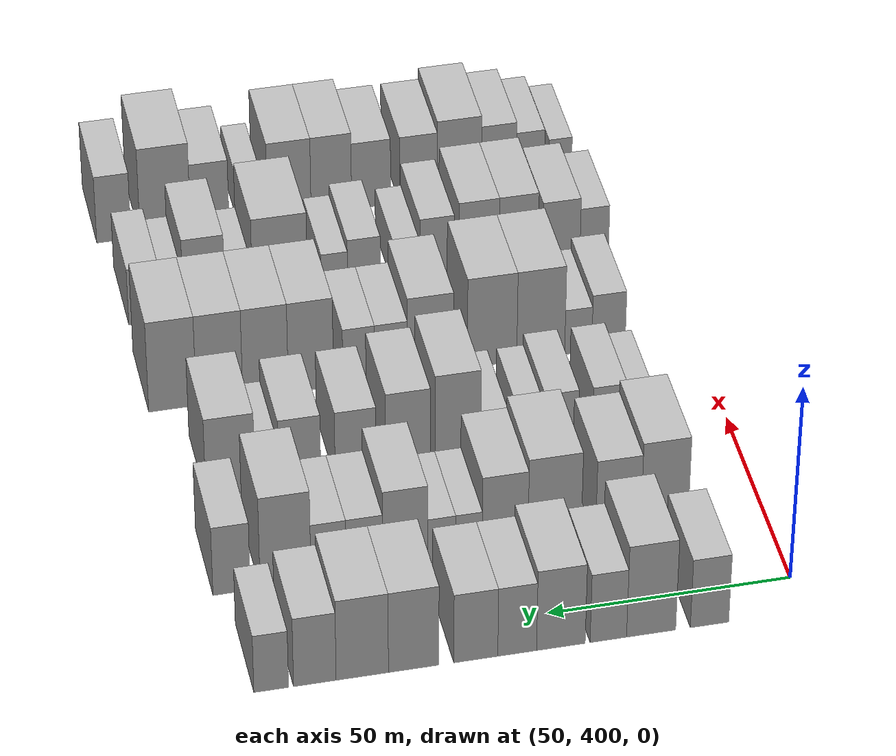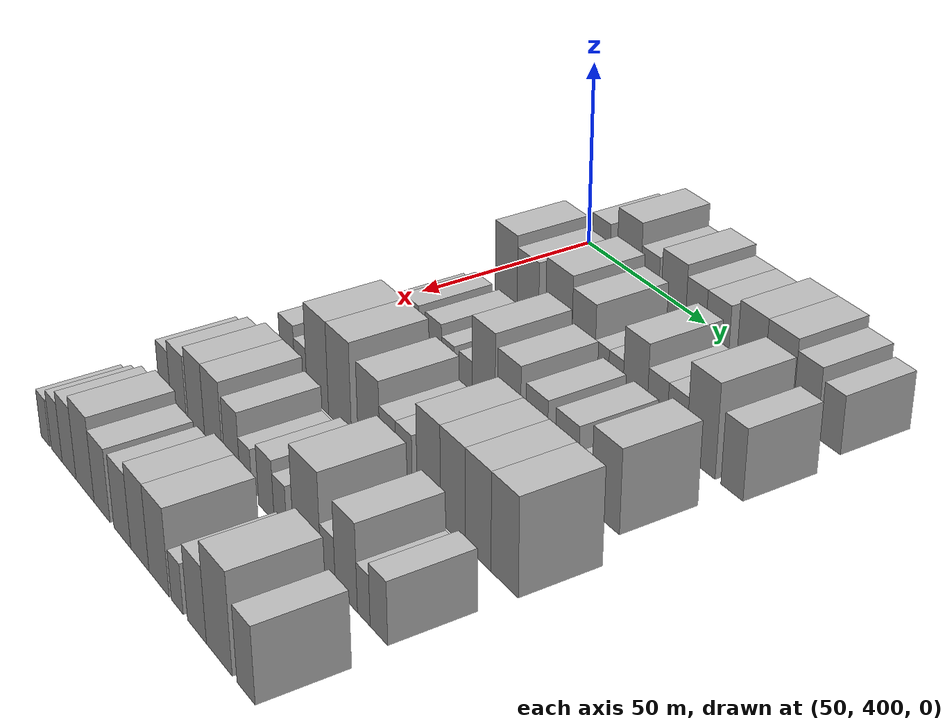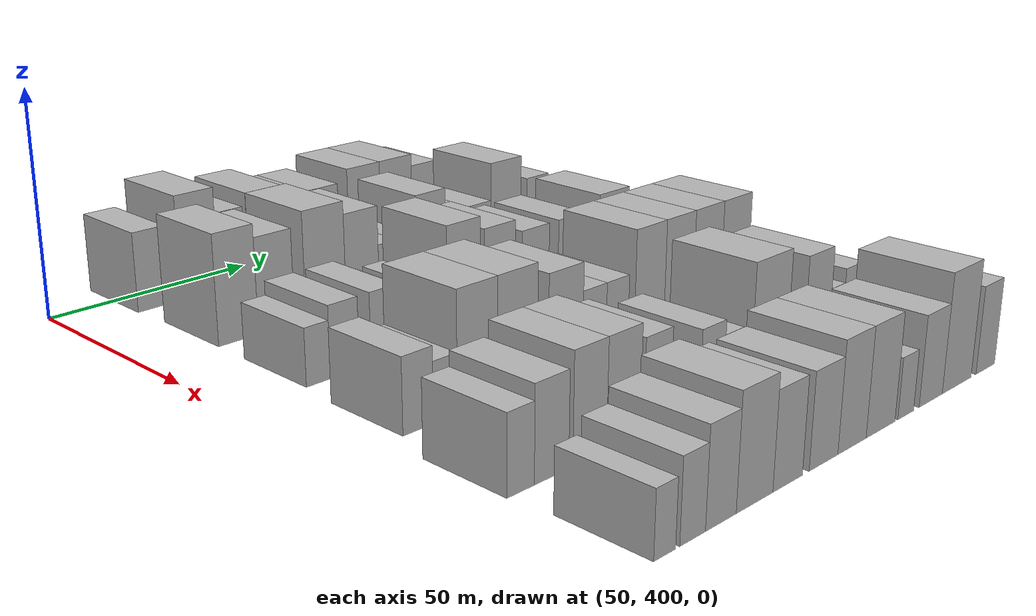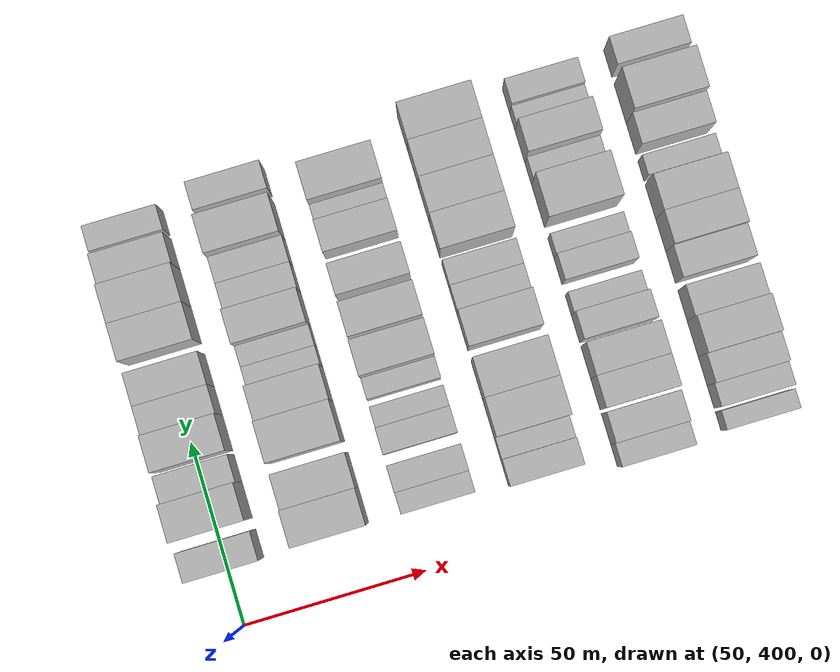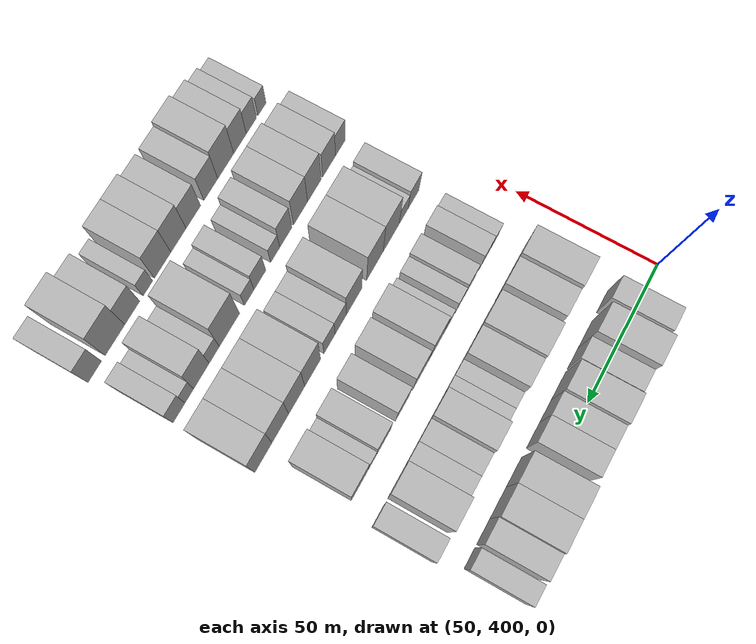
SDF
<sdf version="1.6">
 <world name="default">
  <model name="building_100">
   <static>1</static>
   <pose>50.0000 419.4300 0 0.000000 0.000000 0.000000</pose>
   <link name="link">
    <pose>0 0 9.00 0 0 0</pose>
    <collision name="collision"><geometry><box><size>20.0000 7.8443 18.0000</size></box></geometry></collision>
    <visual name="visual">
     <cast_shadows>0</cast_shadows>
     <geometry><box><size>20.0000 7.8443 18.0000</size></box></geometry>
     <material>
      <script>
       <uri>model://HANNAS_wall/materials/scripts</uri>
       <uri>model://HANNAS_wall/materials/textures</uri>
       <name>vrc/HANNAS_wall</name>
      </script>
     </material>
    </visual>
   </link>
  </model>
  <model name="building_101">
   <static>1</static>
   <pose>50.0000 431.3557 0 0.000000 0.000000 0.000000</pose>
   <link name="link">
    <pose>0 0 12.00 0 0 0</pose>
    <collision name="collision"><geometry><box><size>20.0000 10.0070 24.0000</size></box></geometry></collision>
    <visual name="visual">
     <cast_shadows>0</cast_shadows>
     <geometry><box><size>20.0000 10.0070 24.0000</size></box></geometry>
     <material>
      <script>
       <uri>model://HANNAS_wall/materials/scripts</uri>
       <uri>model://HANNAS_wall/materials/textures</uri>
       <name>vrc/HANNAS_wall</name>
      </script>
     </material>
    </visual>
   </link>
  </model>
  <model name="building_102">
   <static>1</static>
   <pose>50.0000 440.0651 0 0.000000 0.000000 0.000000</pose>
   <link name="link">
    <pose>0 0 9.00 0 0 0</pose>
    <collision name="collision"><geometry><box><size>20.0000 7.4118 18.0000</size></box></geometry></collision>
    <visual name="visual">
     <cast_shadows>0</cast_shadows>
     <geometry><box><size>20.0000 7.4118 18.0000</size></box></geometry>
     <material>
      <script>
       <uri>model://HANNAS_wall/materials/scripts</uri>
       <uri>model://HANNAS_wall/materials/textures</uri>
       <name>vrc/HANNAS_wall</name>
      </script>
     </material>
    </visual>
   </link>
  </model>
  <model name="building_103">
   <static>1</static>
   <pose>50.0000 449.6973 0 0.000000 0.000000 0.000000</pose>
   <link name="link">
    <pose>0 0 10.50 0 0 0</pose>
    <collision name="collision"><geometry><box><size>20.0000 9.8526 21.0000</size></box></geometry></collision>
    <visual name="visual">
     <cast_shadows>0</cast_shadows>
     <geometry><box><size>20.0000 9.8526 21.0000</size></box></geometry>
     <material>
      <script>
       <uri>model://HANNAS_wall/materials/scripts</uri>
       <uri>model://HANNAS_wall/materials/textures</uri>
       <name>vrc/HANNAS_wall</name>
      </script>
     </material>
    </visual>
   </link>
  </model>
  <model name="building_104">
   <static>1</static>
   <pose>50.0000 458.5355 0 0.000000 0.000000 0.000000</pose>
   <link name="link">
    <pose>0 0 9.00 0 0 0</pose>
    <collision name="collision"><geometry><box><size>20.0000 7.8239 18.0000</size></box></geometry></collision>
    <visual name="visual">
     <cast_shadows>0</cast_shadows>
     <geometry><box><size>20.0000 7.8239 18.0000</size></box></geometry>
     <material>
      <script>
       <uri>model://HANNAS_wall/materials/scripts</uri>
       <uri>model://HANNAS_wall/materials/textures</uri>
       <name>vrc/HANNAS_wall</name>
      </script>
     </material>
    </visual>
   </link>
  </model>
  <model name="building_105">
   <static>1</static>
   <pose>50.0000 466.8788 0 0.000000 0.000000 0.000000</pose>
   <link name="link">
    <pose>0 0 9.00 0 0 0</pose>
    <collision name="collision"><geometry><box><size>20.0000 8.8627 18.0000</size></box></geometry></collision>
    <visual name="visual">
     <cast_shadows>0</cast_shadows>
     <geometry><box><size>20.0000 8.8627 18.0000</size></box></geometry>
     <material>
      <script>
       <uri>model://HANNAS_wall/materials/scripts</uri>
       <uri>model://HANNAS_wall/materials/textures</uri>
       <name>vrc/HANNAS_wall</name>
      </script>
     </material>
    </visual>
   </link>
  </model>
  <model name="building_106">
   <static>1</static>
   <pose>50.0000 479.3639 0 0.000000 0.000000 0.000000</pose>
   <link name="link">
    <pose>0 0 10.50 0 0 0</pose>
    <collision name="collision"><geometry><box><size>20.0000 10.1074 21.0000</size></box></geometry></collision>
    <visual name="visual">
     <cast_shadows>0</cast_shadows>
     <geometry><box><size>20.0000 10.1074 21.0000</size></box></geometry>
     <material>
      <script>
       <uri>model://HANNAS_wall/materials/scripts</uri>
       <uri>model://HANNAS_wall/materials/textures</uri>
       <name>vrc/HANNAS_wall</name>
      </script>
     </material>
    </visual>
   </link>
  </model>
  <model name="building_107">
   <static>1</static>
   <pose>50.0000 489.6445 0 0.000000 0.000000 0.000000</pose>
   <link name="link">
    <pose>0 0 10.50 0 0 0</pose>
    <collision name="collision"><geometry><box><size>20.0000 10.4537 21.0000</size></box></geometry></collision>
    <visual name="visual">
     <cast_shadows>0</cast_shadows>
     <geometry><box><size>20.0000 10.4537 21.0000</size></box></geometry>
     <material>
      <script>
       <uri>model://HANNAS_wall/materials/scripts</uri>
       <uri>model://HANNAS_wall/materials/textures</uri>
       <name>vrc/HANNAS_wall</name>
      </script>
     </material>
    </visual>
   </link>
  </model>
  <model name="building_108">
   <static>1</static>
   <pose>50.0000 499.1113 0 0.000000 0.000000 0.000000</pose>
   <link name="link">
    <pose>0 0 9.00 0 0 0</pose>
    <collision name="collision"><geometry><box><size>20.0000 8.4799 18.0000</size></box></geometry></collision>
    <visual name="visual">
     <cast_shadows>0</cast_shadows>
     <geometry><box><size>20.0000 8.4799 18.0000</size></box></geometry>
     <material>
      <script>
       <uri>model://HANNAS_wall/materials/scripts</uri>
       <uri>model://HANNAS_wall/materials/textures</uri>
       <name>vrc/HANNAS_wall</name>
      </script>
     </material>
    </visual>
   </link>
  </model>
  <model name="building_109">
   <static>1</static>
   <pose>50.0000 507.7912 0 0.000000 0.000000 0.000000</pose>
   <link name="link">
    <pose>0 0 7.50 0 0 0</pose>
    <collision name="collision"><geometry><box><size>20.0000 6.8800 15.0000</size></box></geometry></collision>
    <visual name="visual">
     <cast_shadows>0</cast_shadows>
     <geometry><box><size>20.0000 6.8800 15.0000</size></box></geometry>
     <material>
      <script>
       <uri>model://HANNAS_wall/materials/scripts</uri>
       <uri>model://HANNAS_wall/materials/textures</uri>
       <name>vrc/HANNAS_wall</name>
      </script>
     </material>
    </visual>
   </link>
  </model>
  <model name="building_215">
   <static>1</static>
   <pose>79.0000 421.2983 0 0.000000 0.000000 0.000000</pose>
   <link name="link">
    <pose>0 0 12.00 0 0 0</pose>
    <collision name="collision"><geometry><box><size>20.0000 9.8727 24.0000</size></box></geometry></collision>
    <visual name="visual">
     <cast_shadows>0</cast_shadows>
     <geometry><box><size>20.0000 9.8727 24.0000</size></box></geometry>
     <material>
      <script>
       <uri>model://HANNAS_wall/materials/scripts</uri>
       <uri>model://HANNAS_wall/materials/textures</uri>
       <name>vrc/HANNAS_wall</name>
      </script>
     </material>
    </visual>
   </link>
  </model>
  <model name="building_216">
   <static>1</static>
   <pose>79.0000 430.9263 0 0.000000 0.000000 0.000000</pose>
   <link name="link">
    <pose>0 0 10.50 0 0 0</pose>
    <collision name="collision"><geometry><box><size>20.0000 9.3831 21.0000</size></box></geometry></collision>
    <visual name="visual">
     <cast_shadows>0</cast_shadows>
     <geometry><box><size>20.0000 9.3831 21.0000</size></box></geometry>
     <material>
      <script>
       <uri>model://HANNAS_wall/materials/scripts</uri>
       <uri>model://HANNAS_wall/materials/textures</uri>
       <name>vrc/HANNAS_wall</name>
      </script>
     </material>
    </visual>
   </link>
  </model>
  <model name="building_217">
   <static>1</static>
   <pose>79.0000 444.1387 0 0.000000 0.000000 0.000000</pose>
   <link name="link">
    <pose>0 0 12.00 0 0 0</pose>
    <collision name="collision"><geometry><box><size>20.0000 11.0417 24.0000</size></box></geometry></collision>
    <visual name="visual">
     <cast_shadows>0</cast_shadows>
     <geometry><box><size>20.0000 11.0417 24.0000</size></box></geometry>
     <material>
      <script>
       <uri>model://HANNAS_wall/materials/scripts</uri>
       <uri>model://HANNAS_wall/materials/textures</uri>
       <name>vrc/HANNAS_wall</name>
      </script>
     </material>
    </visual>
   </link>
  </model>
  <model name="building_218">
   <static>1</static>
   <pose>79.0000 454.3890 0 0.000000 0.000000 0.000000</pose>
   <link name="link">
    <pose>0 0 10.50 0 0 0</pose>
    <collision name="collision"><geometry><box><size>20.0000 9.4590 21.0000</size></box></geometry></collision>
    <visual name="visual">
     <cast_shadows>0</cast_shadows>
     <geometry><box><size>20.0000 9.4590 21.0000</size></box></geometry>
     <material>
      <script>
       <uri>model://HANNAS_wall/materials/scripts</uri>
       <uri>model://HANNAS_wall/materials/textures</uri>
       <name>vrc/HANNAS_wall</name>
      </script>
     </material>
    </visual>
   </link>
  </model>
  <model name="building_219">
   <static>1</static>
   <pose>79.0000 461.8447 0 0.000000 0.000000 0.000000</pose>
   <link name="link">
    <pose>0 0 6.00 0 0 0</pose>
    <collision name="collision"><geometry><box><size>20.0000 5.4525 12.0000</size></box></geometry></collision>
    <visual name="visual">
     <cast_shadows>0</cast_shadows>
     <geometry><box><size>20.0000 5.4525 12.0000</size></box></geometry>
     <material>
      <script>
       <uri>model://HANNAS_wall/materials/scripts</uri>
       <uri>model://HANNAS_wall/materials/textures</uri>
       <name>vrc/HANNAS_wall</name>
      </script>
     </material>
    </visual>
   </link>
  </model>
  <model name="building_220">
   <static>1</static>
   <pose>79.0000 467.4290 0 0.000000 0.000000 0.000000</pose>
   <link name="link">
    <pose>0 0 6.00 0 0 0</pose>
    <collision name="collision"><geometry><box><size>20.0000 5.7161 12.0000</size></box></geometry></collision>
    <visual name="visual">
     <cast_shadows>0</cast_shadows>
     <geometry><box><size>20.0000 5.7161 12.0000</size></box></geometry>
     <material>
      <script>
       <uri>model://HANNAS_wall/materials/scripts</uri>
       <uri>model://HANNAS_wall/materials/textures</uri>
       <name>vrc/HANNAS_wall</name>
      </script>
     </material>
    </visual>
   </link>
  </model>
  <model name="building_221">
   <static>1</static>
   <pose>79.0000 474.9146 0 0.000000 0.000000 0.000000</pose>
   <link name="link">
    <pose>0 0 10.50 0 0 0</pose>
    <collision name="collision"><geometry><box><size>20.0000 9.2550 21.0000</size></box></geometry></collision>
    <visual name="visual">
     <cast_shadows>0</cast_shadows>
     <geometry><box><size>20.0000 9.2550 21.0000</size></box></geometry>
     <material>
      <script>
       <uri>model://HANNAS_wall/materials/scripts</uri>
       <uri>model://HANNAS_wall/materials/textures</uri>
       <name>vrc/HANNAS_wall</name>
      </script>
     </material>
    </visual>
   </link>
  </model>
  <model name="building_222">
   <static>1</static>
   <pose>79.0000 483.2674 0 0.000000 0.000000 0.000000</pose>
   <link name="link">
    <pose>0 0 7.50 0 0 0</pose>
    <collision name="collision"><geometry><box><size>20.0000 7.4507 15.0000</size></box></geometry></collision>
    <visual name="visual">
     <cast_shadows>0</cast_shadows>
     <geometry><box><size>20.0000 7.4507 15.0000</size></box></geometry>
     <material>
      <script>
       <uri>model://HANNAS_wall/materials/scripts</uri>
       <uri>model://HANNAS_wall/materials/textures</uri>
       <name>vrc/HANNAS_wall</name>
      </script>
     </material>
    </visual>
   </link>
  </model>
  <model name="building_223">
   <static>1</static>
   <pose>79.0000 490.5934 0 0.000000 0.000000 0.000000</pose>
   <link name="link">
    <pose>0 0 7.50 0 0 0</pose>
    <collision name="collision"><geometry><box><size>20.0000 7.2014 15.0000</size></box></geometry></collision>
    <visual name="visual">
     <cast_shadows>0</cast_shadows>
     <geometry><box><size>20.0000 7.2014 15.0000</size></box></geometry>
     <material>
      <script>
       <uri>model://HANNAS_wall/materials/scripts</uri>
       <uri>model://HANNAS_wall/materials/textures</uri>
       <name>vrc/HANNAS_wall</name>
      </script>
     </material>
    </visual>
   </link>
  </model>
  <model name="building_224">
   <static>1</static>
   <pose>79.0000 499.3668 0 0.000000 0.000000 0.000000</pose>
   <link name="link">
    <pose>0 0 12.00 0 0 0</pose>
    <collision name="collision"><geometry><box><size>20.0000 10.3454 24.0000</size></box></geometry></collision>
    <visual name="visual">
     <cast_shadows>0</cast_shadows>
     <geometry><box><size>20.0000 10.3454 24.0000</size></box></geometry>
     <material>
      <script>
       <uri>model://HANNAS_wall/materials/scripts</uri>
       <uri>model://HANNAS_wall/materials/textures</uri>
       <name>vrc/HANNAS_wall</name>
      </script>
     </material>
    </visual>
   </link>
  </model>
  <model name="building_225">
   <static>1</static>
   <pose>79.0000 510.3295 0 0.000000 0.000000 0.000000</pose>
   <link name="link">
    <pose>0 0 9.00 0 0 0</pose>
    <collision name="collision"><geometry><box><size>20.0000 7.5800 18.0000</size></box></geometry></collision>
    <visual name="visual">
     <cast_shadows>0</cast_shadows>
     <geometry><box><size>20.0000 7.5800 18.0000</size></box></geometry>
     <material>
      <script>
       <uri>model://HANNAS_wall/materials/scripts</uri>
       <uri>model://HANNAS_wall/materials/textures</uri>
       <name>vrc/HANNAS_wall</name>
      </script>
     </material>
    </visual>
   </link>
  </model>
  <model name="building_325">
   <static>1</static>
   <pose>108.0000 419.1639 0 0.000000 0.000000 0.000000</pose>
   <link name="link">
    <pose>0 0 6.00 0 0 0</pose>
    <collision name="collision"><geometry><box><size>20.0000 5.8023 12.0000</size></box></geometry></collision>
    <visual name="visual">
     <cast_shadows>0</cast_shadows>
     <geometry><box><size>20.0000 5.8023 12.0000</size></box></geometry>
     <material>
      <script>
       <uri>model://HANNAS_wall/materials/scripts</uri>
       <uri>model://HANNAS_wall/materials/textures</uri>
       <name>vrc/HANNAS_wall</name>
      </script>
     </material>
    </visual>
   </link>
  </model>
  <model name="building_326">
   <static>1</static>
   <pose>108.0000 425.6625 0 0.000000 0.000000 0.000000</pose>
   <link name="link">
    <pose>0 0 7.50 0 0 0</pose>
    <collision name="collision"><geometry><box><size>20.0000 7.1950 15.0000</size></box></geometry></collision>
    <visual name="visual">
     <cast_shadows>0</cast_shadows>
     <geometry><box><size>20.0000 7.1950 15.0000</size></box></geometry>
     <material>
      <script>
       <uri>model://HANNAS_wall/materials/scripts</uri>
       <uri>model://HANNAS_wall/materials/textures</uri>
       <name>vrc/HANNAS_wall</name>
      </script>
     </material>
    </visual>
   </link>
  </model>
  <model name="building_327">
   <static>1</static>
   <pose>108.0000 435.8469 0 0.000000 0.000000 0.000000</pose>
   <link name="link">
    <pose>0 0 7.50 0 0 0</pose>
    <collision name="collision"><geometry><box><size>20.0000 7.1737 15.0000</size></box></geometry></collision>
    <visual name="visual">
     <cast_shadows>0</cast_shadows>
     <geometry><box><size>20.0000 7.1737 15.0000</size></box></geometry>
     <material>
      <script>
       <uri>model://HANNAS_wall/materials/scripts</uri>
       <uri>model://HANNAS_wall/materials/textures</uri>
       <name>vrc/HANNAS_wall</name>
      </script>
     </material>
    </visual>
   </link>
  </model>
  <model name="building_328">
   <static>1</static>
   <pose>108.0000 442.2722 0 0.000000 0.000000 0.000000</pose>
   <link name="link">
    <pose>0 0 6.00 0 0 0</pose>
    <collision name="collision"><geometry><box><size>20.0000 5.6770 12.0000</size></box></geometry></collision>
    <visual name="visual">
     <cast_shadows>0</cast_shadows>
     <geometry><box><size>20.0000 5.6770 12.0000</size></box></geometry>
     <material>
      <script>
       <uri>model://HANNAS_wall/materials/scripts</uri>
       <uri>model://HANNAS_wall/materials/textures</uri>
       <name>vrc/HANNAS_wall</name>
      </script>
     </material>
    </visual>
   </link>
  </model>
  <model name="building_329">
   <static>1</static>
   <pose>108.0000 450.0108 0 0.000000 0.000000 0.000000</pose>
   <link name="link">
    <pose>0 0 6.00 0 0 0</pose>
    <collision name="collision"><geometry><box><size>20.0000 5.8003 12.0000</size></box></geometry></collision>
    <visual name="visual">
     <cast_shadows>0</cast_shadows>
     <geometry><box><size>20.0000 5.8003 12.0000</size></box></geometry>
     <material>
      <script>
       <uri>model://HANNAS_wall/materials/scripts</uri>
       <uri>model://HANNAS_wall/materials/textures</uri>
       <name>vrc/HANNAS_wall</name>
      </script>
     </material>
    </visual>
   </link>
  </model>
  <model name="building_330">
   <static>1</static>
   <pose>108.0000 457.7165 0 0.000000 0.000000 0.000000</pose>
   <link name="link">
    <pose>0 0 12.00 0 0 0</pose>
    <collision name="collision"><geometry><box><size>20.0000 9.6110 24.0000</size></box></geometry></collision>
    <visual name="visual">
     <cast_shadows>0</cast_shadows>
     <geometry><box><size>20.0000 9.6110 24.0000</size></box></geometry>
     <material>
      <script>
       <uri>model://HANNAS_wall/materials/scripts</uri>
       <uri>model://HANNAS_wall/materials/textures</uri>
       <name>vrc/HANNAS_wall</name>
      </script>
     </material>
    </visual>
   </link>
  </model>
  <model name="building_331">
   <static>1</static>
   <pose>108.0000 468.1903 0 0.000000 0.000000 0.000000</pose>
   <link name="link">
    <pose>0 0 10.50 0 0 0</pose>
    <collision name="collision"><geometry><box><size>20.0000 9.3367 21.0000</size></box></geometry></collision>
    <visual name="visual">
     <cast_shadows>0</cast_shadows>
     <geometry><box><size>20.0000 9.3367 21.0000</size></box></geometry>
     <material>
      <script>
       <uri>model://HANNAS_wall/materials/scripts</uri>
       <uri>model://HANNAS_wall/materials/textures</uri>
       <name>vrc/HANNAS_wall</name>
      </script>
     </material>
    </visual>
   </link>
  </model>
  <model name="building_332">
   <static>1</static>
   <pose>108.0000 479.1507 0 0.000000 0.000000 0.000000</pose>
   <link name="link">
    <pose>0 0 9.00 0 0 0</pose>
    <collision name="collision"><geometry><box><size>20.0000 8.5839 18.0000</size></box></geometry></collision>
    <visual name="visual">
     <cast_shadows>0</cast_shadows>
     <geometry><box><size>20.0000 8.5839 18.0000</size></box></geometry>
     <material>
      <script>
       <uri>model://HANNAS_wall/materials/scripts</uri>
       <uri>model://HANNAS_wall/materials/textures</uri>
       <name>vrc/HANNAS_wall</name>
      </script>
     </material>
    </visual>
   </link>
  </model>
  <model name="building_333">
   <static>1</static>
   <pose>108.0000 490.8267 0 0.000000 0.000000 0.000000</pose>
   <link name="link">
    <pose>0 0 9.00 0 0 0</pose>
    <collision name="collision"><geometry><box><size>20.0000 8.7683 18.0000</size></box></geometry></collision>
    <visual name="visual">
     <cast_shadows>0</cast_shadows>
     <geometry><box><size>20.0000 8.7683 18.0000</size></box></geometry>
     <material>
      <script>
       <uri>model://HANNAS_wall/materials/scripts</uri>
       <uri>model://HANNAS_wall/materials/textures</uri>
       <name>vrc/HANNAS_wall</name>
      </script>
     </material>
    </visual>
   </link>
  </model>
  <model name="building_334">
   <static>1</static>
   <pose>108.0000 497.6744 0 0.000000 0.000000 0.000000</pose>
   <link name="link">
    <pose>0 0 6.00 0 0 0</pose>
    <collision name="collision"><geometry><box><size>20.0000 4.9271 12.0000</size></box></geometry></collision>
    <visual name="visual">
     <cast_shadows>0</cast_shadows>
     <geometry><box><size>20.0000 4.9271 12.0000</size></box></geometry>
     <material>
      <script>
       <uri>model://HANNAS_wall/materials/scripts</uri>
       <uri>model://HANNAS_wall/materials/textures</uri>
       <name>vrc/HANNAS_wall</name>
      </script>
     </material>
    </visual>
   </link>
  </model>
  <model name="building_335">
   <static>1</static>
   <pose>108.0000 505.2591 0 0.000000 0.000000 0.000000</pose>
   <link name="link">
    <pose>0 0 10.50 0 0 0</pose>
    <collision name="collision"><geometry><box><size>20.0000 10.2422 21.0000</size></box></geometry></collision>
    <visual name="visual">
     <cast_shadows>0</cast_shadows>
     <geometry><box><size>20.0000 10.2422 21.0000</size></box></geometry>
     <material>
      <script>
       <uri>model://HANNAS_wall/materials/scripts</uri>
       <uri>model://HANNAS_wall/materials/textures</uri>
       <name>vrc/HANNAS_wall</name>
      </script>
     </material>
    </visual>
   </link>
  </model>
  <model name="building_432">
   <static>1</static>
   <pose>137.0000 418.6637 0 0.000000 0.000000 0.000000</pose>
   <link name="link">
    <pose>0 0 7.50 0 0 0</pose>
    <collision name="collision"><geometry><box><size>20.0000 7.2695 15.0000</size></box></geometry></collision>
    <visual name="visual">
     <cast_shadows>0</cast_shadows>
     <geometry><box><size>20.0000 7.2695 15.0000</size></box></geometry>
     <material>
      <script>
       <uri>model://HANNAS_wall/materials/scripts</uri>
       <uri>model://HANNAS_wall/materials/textures</uri>
       <name>vrc/HANNAS_wall</name>
      </script>
     </material>
    </visual>
   </link>
  </model>
  <model name="building_433">
   <static>1</static>
   <pose>137.0000 425.2431 0 0.000000 0.000000 0.000000</pose>
   <link name="link">
    <pose>0 0 6.00 0 0 0</pose>
    <collision name="collision"><geometry><box><size>20.0000 5.8892 12.0000</size></box></geometry></collision>
    <visual name="visual">
     <cast_shadows>0</cast_shadows>
     <geometry><box><size>20.0000 5.8892 12.0000</size></box></geometry>
     <material>
      <script>
       <uri>model://HANNAS_wall/materials/scripts</uri>
       <uri>model://HANNAS_wall/materials/textures</uri>
       <name>vrc/HANNAS_wall</name>
      </script>
     </material>
    </visual>
   </link>
  </model>
  <model name="building_434">
   <static>1</static>
   <pose>137.0000 433.3863 0 0.000000 0.000000 0.000000</pose>
   <link name="link">
    <pose>0 0 12.00 0 0 0</pose>
    <collision name="collision"><geometry><box><size>20.0000 10.3970 24.0000</size></box></geometry></collision>
    <visual name="visual">
     <cast_shadows>0</cast_shadows>
     <geometry><box><size>20.0000 10.3970 24.0000</size></box></geometry>
     <material>
      <script>
       <uri>model://HANNAS_wall/materials/scripts</uri>
       <uri>model://HANNAS_wall/materials/textures</uri>
       <name>vrc/HANNAS_wall</name>
      </script>
     </material>
    </visual>
   </link>
  </model>
  <model name="building_435">
   <static>1</static>
   <pose>137.0000 443.9333 0 0.000000 0.000000 0.000000</pose>
   <link name="link">
    <pose>0 0 12.00 0 0 0</pose>
    <collision name="collision"><geometry><box><size>20.0000 10.6971 24.0000</size></box></geometry></collision>
    <visual name="visual">
     <cast_shadows>0</cast_shadows>
     <geometry><box><size>20.0000 10.6971 24.0000</size></box></geometry>
     <material>
      <script>
       <uri>model://HANNAS_wall/materials/scripts</uri>
       <uri>model://HANNAS_wall/materials/textures</uri>
       <name>vrc/HANNAS_wall</name>
      </script>
     </material>
    </visual>
   </link>
  </model>
  <model name="building_436">
   <static>1</static>
   <pose>137.0000 457.2199 0 0.000000 0.000000 0.000000</pose>
   <link name="link">
    <pose>0 0 10.50 0 0 0</pose>
    <collision name="collision"><geometry><box><size>20.0000 9.8761 21.0000</size></box></geometry></collision>
    <visual name="visual">
     <cast_shadows>0</cast_shadows>
     <geometry><box><size>20.0000 9.8761 21.0000</size></box></geometry>
     <material>
      <script>
       <uri>model://HANNAS_wall/materials/scripts</uri>
       <uri>model://HANNAS_wall/materials/textures</uri>
       <name>vrc/HANNAS_wall</name>
      </script>
     </material>
    </visual>
   </link>
  </model>
  <model name="building_437">
   <static>1</static>
   <pose>137.0000 465.6672 0 0.000000 0.000000 0.000000</pose>
   <link name="link">
    <pose>0 0 7.50 0 0 0</pose>
    <collision name="collision"><geometry><box><size>20.0000 7.0187 15.0000</size></box></geometry></collision>
    <visual name="visual">
     <cast_shadows>0</cast_shadows>
     <geometry><box><size>20.0000 7.0187 15.0000</size></box></geometry>
     <material>
      <script>
       <uri>model://HANNAS_wall/materials/scripts</uri>
       <uri>model://HANNAS_wall/materials/textures</uri>
       <name>vrc/HANNAS_wall</name>
      </script>
     </material>
    </visual>
   </link>
  </model>
  <model name="building_438">
   <static>1</static>
   <pose>137.0000 472.5908 0 0.000000 0.000000 0.000000</pose>
   <link name="link">
    <pose>0 0 7.50 0 0 0</pose>
    <collision name="collision"><geometry><box><size>20.0000 6.8285 15.0000</size></box></geometry></collision>
    <visual name="visual">
     <cast_shadows>0</cast_shadows>
     <geometry><box><size>20.0000 6.8285 15.0000</size></box></geometry>
     <material>
      <script>
       <uri>model://HANNAS_wall/materials/scripts</uri>
       <uri>model://HANNAS_wall/materials/textures</uri>
       <name>vrc/HANNAS_wall</name>
      </script>
     </material>
    </visual>
   </link>
  </model>
  <model name="building_439">
   <static>1</static>
   <pose>137.0000 482.8297 0 0.000000 0.000000 0.000000</pose>
   <link name="link">
    <pose>0 0 12.00 0 0 0</pose>
    <collision name="collision"><geometry><box><size>20.0000 9.6493 24.0000</size></box></geometry></collision>
    <visual name="visual">
     <cast_shadows>0</cast_shadows>
     <geometry><box><size>20.0000 9.6493 24.0000</size></box></geometry>
     <material>
      <script>
       <uri>model://HANNAS_wall/materials/scripts</uri>
       <uri>model://HANNAS_wall/materials/textures</uri>
       <name>vrc/HANNAS_wall</name>
      </script>
     </material>
    </visual>
   </link>
  </model>
  <model name="building_440">
   <static>1</static>
   <pose>137.0000 492.5023 0 0.000000 0.000000 0.000000</pose>
   <link name="link">
    <pose>0 0 12.00 0 0 0</pose>
    <collision name="collision"><geometry><box><size>20.0000 9.6960 24.0000</size></box></geometry></collision>
    <visual name="visual">
     <cast_shadows>0</cast_shadows>
     <geometry><box><size>20.0000 9.6960 24.0000</size></box></geometry>
     <material>
      <script>
       <uri>model://HANNAS_wall/materials/scripts</uri>
       <uri>model://HANNAS_wall/materials/textures</uri>
       <name>vrc/HANNAS_wall</name>
      </script>
     </material>
    </visual>
   </link>
  </model>
  <model name="building_441">
   <static>1</static>
   <pose>137.0000 502.2857 0 0.000000 0.000000 0.000000</pose>
   <link name="link">
    <pose>0 0 12.00 0 0 0</pose>
    <collision name="collision"><geometry><box><size>20.0000 9.8709 24.0000</size></box></geometry></collision>
    <visual name="visual">
     <cast_shadows>0</cast_shadows>
     <geometry><box><size>20.0000 9.8709 24.0000</size></box></geometry>
     <material>
      <script>
       <uri>model://HANNAS_wall/materials/scripts</uri>
       <uri>model://HANNAS_wall/materials/textures</uri>
       <name>vrc/HANNAS_wall</name>
      </script>
     </material>
    </visual>
   </link>
  </model>
  <model name="building_442">
   <static>1</static>
   <pose>137.0000 512.2622 0 0.000000 0.000000 0.000000</pose>
   <link name="link">
    <pose>0 0 12.00 0 0 0</pose>
    <collision name="collision"><geometry><box><size>20.0000 10.0821 24.0000</size></box></geometry></collision>
    <visual name="visual">
     <cast_shadows>0</cast_shadows>
     <geometry><box><size>20.0000 10.0821 24.0000</size></box></geometry>
     <material>
      <script>
       <uri>model://HANNAS_wall/materials/scripts</uri>
       <uri>model://HANNAS_wall/materials/textures</uri>
       <name>vrc/HANNAS_wall</name>
      </script>
     </material>
    </visual>
   </link>
  </model>
  <model name="building_548">
   <static>1</static>
   <pose>166.0000 414.7504 0 0.000000 0.000000 0.000000</pose>
   <link name="link">
    <pose>0 0 7.50 0 0 0</pose>
    <collision name="collision"><geometry><box><size>20.0000 6.3599 15.0000</size></box></geometry></collision>
    <visual name="visual">
     <cast_shadows>0</cast_shadows>
     <geometry><box><size>20.0000 6.3599 15.0000</size></box></geometry>
     <material>
      <script>
       <uri>model://HANNAS_wall/materials/scripts</uri>
       <uri>model://HANNAS_wall/materials/textures</uri>
       <name>vrc/HANNAS_wall</name>
      </script>
     </material>
    </visual>
   </link>
  </model>
  <model name="building_549">
   <static>1</static>
   <pose>166.0000 422.0825 0 0.000000 0.000000 0.000000</pose>
   <link name="link">
    <pose>0 0 9.00 0 0 0</pose>
    <collision name="collision"><geometry><box><size>20.0000 8.3043 18.0000</size></box></geometry></collision>
    <visual name="visual">
     <cast_shadows>0</cast_shadows>
     <geometry><box><size>20.0000 8.3043 18.0000</size></box></geometry>
     <material>
      <script>
       <uri>model://HANNAS_wall/materials/scripts</uri>
       <uri>model://HANNAS_wall/materials/textures</uri>
       <name>vrc/HANNAS_wall</name>
      </script>
     </material>
    </visual>
   </link>
  </model>
  <model name="building_550">
   <static>1</static>
   <pose>166.0000 431.5427 0 0.000000 0.000000 0.000000</pose>
   <link name="link">
    <pose>0 0 10.50 0 0 0</pose>
    <collision name="collision"><geometry><box><size>20.0000 8.6161 21.0000</size></box></geometry></collision>
    <visual name="visual">
     <cast_shadows>0</cast_shadows>
     <geometry><box><size>20.0000 8.6161 21.0000</size></box></geometry>
     <material>
      <script>
       <uri>model://HANNAS_wall/materials/scripts</uri>
       <uri>model://HANNAS_wall/materials/textures</uri>
       <name>vrc/HANNAS_wall</name>
      </script>
     </material>
    </visual>
   </link>
  </model>
  <model name="building_551">
   <static>1</static>
   <pose>166.0000 440.3020 0 0.000000 0.000000 0.000000</pose>
   <link name="link">
    <pose>0 0 10.50 0 0 0</pose>
    <collision name="collision"><geometry><box><size>20.0000 8.9025 21.0000</size></box></geometry></collision>
    <visual name="visual">
     <cast_shadows>0</cast_shadows>
     <geometry><box><size>20.0000 8.9025 21.0000</size></box></geometry>
     <material>
      <script>
       <uri>model://HANNAS_wall/materials/scripts</uri>
       <uri>model://HANNAS_wall/materials/textures</uri>
       <name>vrc/HANNAS_wall</name>
      </script>
     </material>
    </visual>
   </link>
  </model>
  <model name="building_552">
   <static>1</static>
   <pose>166.0000 449.5131 0 0.000000 0.000000 0.000000</pose>
   <link name="link">
    <pose>0 0 9.00 0 0 0</pose>
    <collision name="collision"><geometry><box><size>20.0000 7.5197 18.0000</size></box></geometry></collision>
    <visual name="visual">
     <cast_shadows>0</cast_shadows>
     <geometry><box><size>20.0000 7.5197 18.0000</size></box></geometry>
     <material>
      <script>
       <uri>model://HANNAS_wall/materials/scripts</uri>
       <uri>model://HANNAS_wall/materials/textures</uri>
       <name>vrc/HANNAS_wall</name>
      </script>
     </material>
    </visual>
   </link>
  </model>
  <model name="building_553">
   <static>1</static>
   <pose>166.0000 456.0992 0 0.000000 0.000000 0.000000</pose>
   <link name="link">
    <pose>0 0 6.00 0 0 0</pose>
    <collision name="collision"><geometry><box><size>20.0000 5.6524 12.0000</size></box></geometry></collision>
    <visual name="visual">
     <cast_shadows>0</cast_shadows>
     <geometry><box><size>20.0000 5.6524 12.0000</size></box></geometry>
     <material>
      <script>
       <uri>model://HANNAS_wall/materials/scripts</uri>
       <uri>model://HANNAS_wall/materials/textures</uri>
       <name>vrc/HANNAS_wall</name>
      </script>
     </material>
    </visual>
   </link>
  </model>
  <model name="building_554">
   <static>1</static>
   <pose>166.0000 465.5263 0 0.000000 0.000000 0.000000</pose>
   <link name="link">
    <pose>0 0 7.50 0 0 0</pose>
    <collision name="collision"><geometry><box><size>20.0000 7.2019 15.0000</size></box></geometry></collision>
    <visual name="visual">
     <cast_shadows>0</cast_shadows>
     <geometry><box><size>20.0000 7.2019 15.0000</size></box></geometry>
     <material>
      <script>
       <uri>model://HANNAS_wall/materials/scripts</uri>
       <uri>model://HANNAS_wall/materials/textures</uri>
       <name>vrc/HANNAS_wall</name>
      </script>
     </material>
    </visual>
   </link>
  </model>
  <model name="building_555">
   <static>1</static>
   <pose>166.0000 471.9912 0 0.000000 0.000000 0.000000</pose>
   <link name="link">
    <pose>0 0 6.00 0 0 0</pose>
    <collision name="collision"><geometry><box><size>20.0000 5.7278 12.0000</size></box></geometry></collision>
    <visual name="visual">
     <cast_shadows>0</cast_shadows>
     <geometry><box><size>20.0000 5.7278 12.0000</size></box></geometry>
     <material>
      <script>
       <uri>model://HANNAS_wall/materials/scripts</uri>
       <uri>model://HANNAS_wall/materials/textures</uri>
       <name>vrc/HANNAS_wall</name>
      </script>
     </material>
    </visual>
   </link>
  </model>
  <model name="building_556">
   <static>1</static>
   <pose>166.0000 483.8348 0 0.000000 0.000000 0.000000</pose>
   <link name="link">
    <pose>0 0 12.00 0 0 0</pose>
    <collision name="collision"><geometry><box><size>20.0000 11.9594 24.0000</size></box></geometry></collision>
    <visual name="visual">
     <cast_shadows>0</cast_shadows>
     <geometry><box><size>20.0000 11.9594 24.0000</size></box></geometry>
     <material>
      <script>
       <uri>model://HANNAS_wall/materials/scripts</uri>
       <uri>model://HANNAS_wall/materials/textures</uri>
       <name>vrc/HANNAS_wall</name>
      </script>
     </material>
    </visual>
   </link>
  </model>
  <model name="building_557">
   <static>1</static>
   <pose>166.0000 492.8064 0 0.000000 0.000000 0.000000</pose>
   <link name="link">
    <pose>0 0 6.00 0 0 0</pose>
    <collision name="collision"><geometry><box><size>20.0000 5.9838 12.0000</size></box></geometry></collision>
    <visual name="visual">
     <cast_shadows>0</cast_shadows>
     <geometry><box><size>20.0000 5.9838 12.0000</size></box></geometry>
     <material>
      <script>
       <uri>model://HANNAS_wall/materials/scripts</uri>
       <uri>model://HANNAS_wall/materials/textures</uri>
       <name>vrc/HANNAS_wall</name>
      </script>
     </material>
    </visual>
   </link>
  </model>
  <model name="building_558">
   <static>1</static>
   <pose>166.0000 500.3046 0 0.000000 0.000000 0.000000</pose>
   <link name="link">
    <pose>0 0 10.50 0 0 0</pose>
    <collision name="collision"><geometry><box><size>20.0000 9.0126 21.0000</size></box></geometry></collision>
    <visual name="visual">
     <cast_shadows>0</cast_shadows>
     <geometry><box><size>20.0000 9.0126 21.0000</size></box></geometry>
     <material>
      <script>
       <uri>model://HANNAS_wall/materials/scripts</uri>
       <uri>model://HANNAS_wall/materials/textures</uri>
       <name>vrc/HANNAS_wall</name>
      </script>
     </material>
    </visual>
   </link>
  </model>
  <model name="building_559">
   <static>1</static>
   <pose>166.0000 507.3325 0 0.000000 0.000000 0.000000</pose>
   <link name="link">
    <pose>0 0 6.00 0 0 0</pose>
    <collision name="collision"><geometry><box><size>20.0000 5.0433 12.0000</size></box></geometry></collision>
    <visual name="visual">
     <cast_shadows>0</cast_shadows>
     <geometry><box><size>20.0000 5.0433 12.0000</size></box></geometry>
     <material>
      <script>
       <uri>model://HANNAS_wall/materials/scripts</uri>
       <uri>model://HANNAS_wall/materials/textures</uri>
       <name>vrc/HANNAS_wall</name>
      </script>
     </material>
    </visual>
   </link>
  </model>
  <model name="building_560">
   <static>1</static>
   <pose>166.0000 513.2786 0 0.000000 0.000000 0.000000</pose>
   <link name="link">
    <pose>0 0 7.50 0 0 0</pose>
    <collision name="collision"><geometry><box><size>20.0000 6.8489 15.0000</size></box></geometry></collision>
    <visual name="visual">
     <cast_shadows>0</cast_shadows>
     <geometry><box><size>20.0000 6.8489 15.0000</size></box></geometry>
     <material>
      <script>
       <uri>model://HANNAS_wall/materials/scripts</uri>
       <uri>model://HANNAS_wall/materials/textures</uri>
       <name>vrc/HANNAS_wall</name>
      </script>
     </material>
    </visual>
   </link>
  </model>
  <model name="building_669">
   <static>1</static>
   <pose>195.0000 415.4315 0 0.000000 0.000000 0.000000</pose>
   <link name="link">
    <pose>0 0 6.00 0 0 0</pose>
    <collision name="collision"><geometry><box><size>20.0000 5.1798 12.0000</size></box></geometry></collision>
    <visual name="visual">
     <cast_shadows>0</cast_shadows>
     <geometry><box><size>20.0000 5.1798 12.0000</size></box></geometry>
     <material>
      <script>
       <uri>model://HANNAS_wall/materials/scripts</uri>
       <uri>model://HANNAS_wall/materials/textures</uri>
       <name>vrc/HANNAS_wall</name>
      </script>
     </material>
    </visual>
   </link>
  </model>
  <model name="building_670">
   <static>1</static>
   <pose>195.0000 422.1806 0 0.000000 0.000000 0.000000</pose>
   <link name="link">
    <pose>0 0 7.50 0 0 0</pose>
    <collision name="collision"><geometry><box><size>20.0000 6.3185 15.0000</size></box></geometry></collision>
    <visual name="visual">
     <cast_shadows>0</cast_shadows>
     <geometry><box><size>20.0000 6.3185 15.0000</size></box></geometry>
     <material>
      <script>
       <uri>model://HANNAS_wall/materials/scripts</uri>
       <uri>model://HANNAS_wall/materials/textures</uri>
       <name>vrc/HANNAS_wall</name>
      </script>
     </material>
    </visual>
   </link>
  </model>
  <model name="building_671">
   <static>1</static>
   <pose>195.0000 429.2886 0 0.000000 0.000000 0.000000</pose>
   <link name="link">
    <pose>0 0 9.00 0 0 0</pose>
    <collision name="collision"><geometry><box><size>20.0000 7.8974 18.0000</size></box></geometry></collision>
    <visual name="visual">
     <cast_shadows>0</cast_shadows>
     <geometry><box><size>20.0000 7.8974 18.0000</size></box></geometry>
     <material>
      <script>
       <uri>model://HANNAS_wall/materials/scripts</uri>
       <uri>model://HANNAS_wall/materials/textures</uri>
       <name>vrc/HANNAS_wall</name>
      </script>
     </material>
    </visual>
   </link>
  </model>
  <model name="building_672">
   <static>1</static>
   <pose>195.0000 438.2079 0 0.000000 0.000000 0.000000</pose>
   <link name="link">
    <pose>0 0 10.50 0 0 0</pose>
    <collision name="collision"><geometry><box><size>20.0000 9.9411 21.0000</size></box></geometry></collision>
    <visual name="visual">
     <cast_shadows>0</cast_shadows>
     <geometry><box><size>20.0000 9.9411 21.0000</size></box></geometry>
     <material>
      <script>
       <uri>model://HANNAS_wall/materials/scripts</uri>
       <uri>model://HANNAS_wall/materials/textures</uri>
       <name>vrc/HANNAS_wall</name>
      </script>
     </material>
    </visual>
   </link>
  </model>
  <model name="building_673">
   <static>1</static>
   <pose>195.0000 447.4132 0 0.000000 0.000000 0.000000</pose>
   <link name="link">
    <pose>0 0 9.00 0 0 0</pose>
    <collision name="collision"><geometry><box><size>20.0000 8.4695 18.0000</size></box></geometry></collision>
    <visual name="visual">
     <cast_shadows>0</cast_shadows>
     <geometry><box><size>20.0000 8.4695 18.0000</size></box></geometry>
     <material>
      <script>
       <uri>model://HANNAS_wall/materials/scripts</uri>
       <uri>model://HANNAS_wall/materials/textures</uri>
       <name>vrc/HANNAS_wall</name>
      </script>
     </material>
    </visual>
   </link>
  </model>
  <model name="building_674">
   <static>1</static>
   <pose>195.0000 458.0185 0 0.000000 0.000000 0.000000</pose>
   <link name="link">
    <pose>0 0 9.00 0 0 0</pose>
    <collision name="collision"><geometry><box><size>20.0000 8.7412 18.0000</size></box></geometry></collision>
    <visual name="visual">
     <cast_shadows>0</cast_shadows>
     <geometry><box><size>20.0000 8.7412 18.0000</size></box></geometry>
     <material>
      <script>
       <uri>model://HANNAS_wall/materials/scripts</uri>
       <uri>model://HANNAS_wall/materials/textures</uri>
       <name>vrc/HANNAS_wall</name>
      </script>
     </material>
    </visual>
   </link>
  </model>
  <model name="building_675">
   <static>1</static>
   <pose>195.0000 466.9136 0 0.000000 0.000000 0.000000</pose>
   <link name="link">
    <pose>0 0 10.50 0 0 0</pose>
    <collision name="collision"><geometry><box><size>20.0000 9.0491 21.0000</size></box></geometry></collision>
    <visual name="visual">
     <cast_shadows>0</cast_shadows>
     <geometry><box><size>20.0000 9.0491 21.0000</size></box></geometry>
     <material>
      <script>
       <uri>model://HANNAS_wall/materials/scripts</uri>
       <uri>model://HANNAS_wall/materials/textures</uri>
       <name>vrc/HANNAS_wall</name>
      </script>
     </material>
    </visual>
   </link>
  </model>
  <model name="building_676">
   <static>1</static>
   <pose>195.0000 476.2921 0 0.000000 0.000000 0.000000</pose>
   <link name="link">
    <pose>0 0 10.50 0 0 0</pose>
    <collision name="collision"><geometry><box><size>20.0000 9.7079 21.0000</size></box></geometry></collision>
    <visual name="visual">
     <cast_shadows>0</cast_shadows>
     <geometry><box><size>20.0000 9.7079 21.0000</size></box></geometry>
     <material>
      <script>
       <uri>model://HANNAS_wall/materials/scripts</uri>
       <uri>model://HANNAS_wall/materials/textures</uri>
       <name>vrc/HANNAS_wall</name>
      </script>
     </material>
    </visual>
   </link>
  </model>
  <model name="building_677">
   <static>1</static>
   <pose>195.0000 484.9153 0 0.000000 0.000000 0.000000</pose>
   <link name="link">
    <pose>0 0 6.00 0 0 0</pose>
    <collision name="collision"><geometry><box><size>20.0000 5.5383 12.0000</size></box></geometry></collision>
    <visual name="visual">
     <cast_shadows>0</cast_shadows>
     <geometry><box><size>20.0000 5.5383 12.0000</size></box></geometry>
     <material>
      <script>
       <uri>model://HANNAS_wall/materials/scripts</uri>
       <uri>model://HANNAS_wall/materials/textures</uri>
       <name>vrc/HANNAS_wall</name>
      </script>
     </material>
    </visual>
   </link>
  </model>
  <model name="building_678">
   <static>1</static>
   <pose>195.0000 493.9526 0 0.000000 0.000000 0.000000</pose>
   <link name="link">
    <pose>0 0 9.00 0 0 0</pose>
    <collision name="collision"><geometry><box><size>20.0000 8.5364 18.0000</size></box></geometry></collision>
    <visual name="visual">
     <cast_shadows>0</cast_shadows>
     <geometry><box><size>20.0000 8.5364 18.0000</size></box></geometry>
     <material>
      <script>
       <uri>model://HANNAS_wall/materials/scripts</uri>
       <uri>model://HANNAS_wall/materials/textures</uri>
       <name>vrc/HANNAS_wall</name>
      </script>
     </material>
    </visual>
   </link>
  </model>
  <model name="building_679">
   <static>1</static>
   <pose>195.0000 503.8061 0 0.000000 0.000000 0.000000</pose>
   <link name="link">
    <pose>0 0 12.00 0 0 0</pose>
    <collision name="collision"><geometry><box><size>20.0000 11.1705 24.0000</size></box></geometry></collision>
    <visual name="visual">
     <cast_shadows>0</cast_shadows>
     <geometry><box><size>20.0000 11.1705 24.0000</size></box></geometry>
     <material>
      <script>
       <uri>model://HANNAS_wall/materials/scripts</uri>
       <uri>model://HANNAS_wall/materials/textures</uri>
       <name>vrc/HANNAS_wall</name>
      </script>
     </material>
    </visual>
   </link>
  </model>
  <model name="building_680">
   <static>1</static>
   <pose>195.0000 515.1754 0 0.000000 0.000000 0.000000</pose>
   <link name="link">
    <pose>0 0 9.00 0 0 0</pose>
    <collision name="collision"><geometry><box><size>20.0000 7.5681 18.0000</size></box></geometry></collision>
    <visual name="visual">
     <cast_shadows>0</cast_shadows>
     <geometry><box><size>20.0000 7.5681 18.0000</size></box></geometry>
     <material>
      <script>
       <uri>model://HANNAS_wall/materials/scripts</uri>
       <uri>model://HANNAS_wall/materials/textures</uri>
       <name>vrc/HANNAS_wall</name>
      </script>
     </material>
    </visual>
   </link>
  </model>
 </world>
</sdf>
